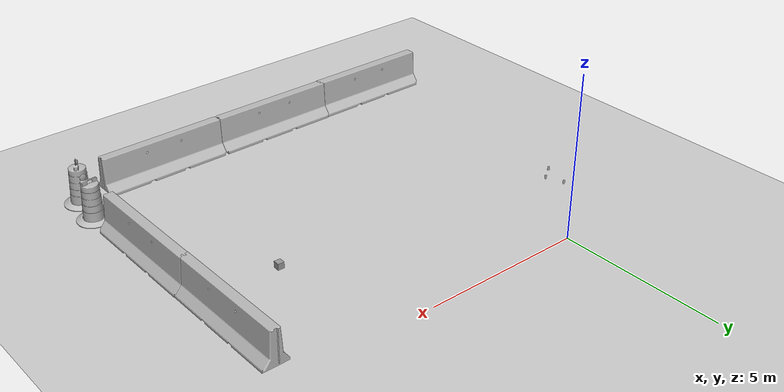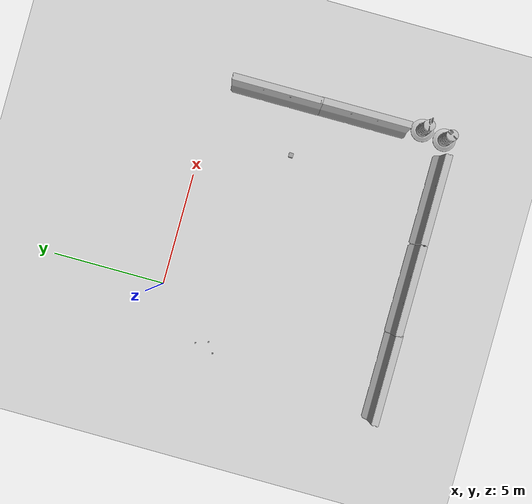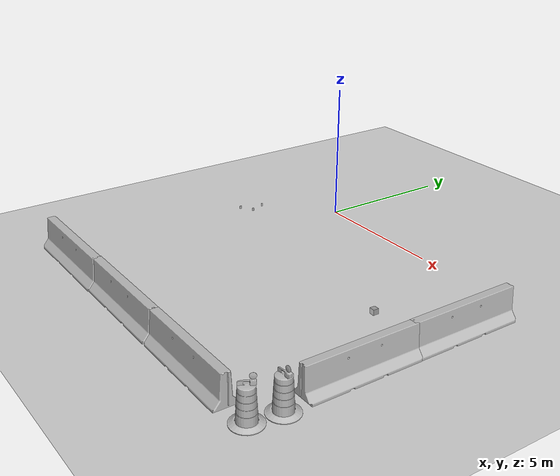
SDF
<sdf version="1.7">
 <world name="default">
  <model name="ground_plane">
   <static>1</static>
   <link name="link">
    <collision name="collision">
     <geometry><plane><normal>0 0 1</normal><size>100 100</size></plane></geometry>
     <surface><friction><ode><mu>100</mu><mu2>50</mu2></ode></friction></surface>
    </collision>
    <visual name="visual">
     <cast_shadows>0</cast_shadows>
     <geometry><plane><normal>0 0 1</normal><size>100 100</size></plane></geometry>
     <material>
      <script><uri>file://media/materials/scripts/gazebo.material</uri><name>Gazebo/Grey</name></script>
     </material>
    </visual>
   </link>
  </model>
  <model name="jersey_barrier_clone_3_clone_0">
   <static>1</static>
   <link name="link">
    <visual name="visual">
     <geometry><mesh><uri>model://jersey_barrier/meshes/jersey_barrier.dae</uri></mesh></geometry>
    </visual>
    <collision name="upright">
     <pose>0 0 0.5715 0 -0 0</pose>
     <geometry><box><size>4.06542 0.3063 1.143</size></box></geometry>
    </collision>
    <collision name="base">
     <pose>0 0 0.032258 0 -0 0</pose>
     <geometry><box><size>4.06542 0.8107 0.064516</size></box></geometry>
    </collision>
    <collision name="base2">
     <pose>0 0 0.1 0 -0 0</pose>
     <geometry><box><size>4.06542 0.65 0.1</size></box></geometry>
    </collision>
    <collision name="base3">
     <pose>0 0 0.2 0 -0 0</pose>
     <geometry><box><size>4.06542 0.5 0.1</size></box></geometry>
    </collision>
    <collision name="left-angle">
     <pose>0 -0.224 0.2401 0.9 -0 0</pose>
     <geometry><box><size>4.06542 0.5 0.064516</size></box></geometry>
    </collision>
    <collision name="right-angle">
     <pose>0 0.224 0.2401 -0.9 0 0</pose>
     <geometry><box><size>4.06542 0.5 0.064516</size></box></geometry>
    </collision>
   </link>
   <pose>9.4315 -2.6268 0 0 0 -1.56865</pose>
  </model>
  <model name="jersey_barrier_clone_3_clone_1">
   <static>1</static>
   <link name="link">
    <visual name="visual">
     <geometry><mesh><uri>model://jersey_barrier/meshes/jersey_barrier.dae</uri></mesh></geometry>
    </visual>
    <collision name="upright">
     <pose>0 0 0.5715 0 -0 0</pose>
     <geometry><box><size>4.06542 0.3063 1.143</size></box></geometry>
    </collision>
    <collision name="base">
     <pose>0 0 0.032258 0 -0 0</pose>
     <geometry><box><size>4.06542 0.8107 0.064516</size></box></geometry>
    </collision>
    <collision name="base2">
     <pose>0 0 0.1 0 -0 0</pose>
     <geometry><box><size>4.06542 0.65 0.1</size></box></geometry>
    </collision>
    <collision name="base3">
     <pose>0 0 0.2 0 -0 0</pose>
     <geometry><box><size>4.06542 0.5 0.1</size></box></geometry>
    </collision>
    <collision name="left-angle">
     <pose>0 -0.224 0.2401 0.9 -0 0</pose>
     <geometry><box><size>4.06542 0.5 0.064516</size></box></geometry>
    </collision>
    <collision name="right-angle">
     <pose>0 0.224 0.2401 -0.9 0 0</pose>
     <geometry><box><size>4.06542 0.5 0.064516</size></box></geometry>
    </collision>
   </link>
   <pose>9.44969 -6.53485 0 0 0 -1.56865</pose>
  </model>
  <model name="jersey_barrier_clone_2_clone">
   <static>1</static>
   <link name="link">
    <visual name="visual">
     <geometry><mesh><uri>model://jersey_barrier/meshes/jersey_barrier.dae</uri></mesh></geometry>
    </visual>
    <collision name="upright">
     <pose>0 0 0.5715 0 -0 0</pose>
     <geometry><box><size>4.06542 0.3063 1.143</size></box></geometry>
    </collision>
    <collision name="base">
     <pose>0 0 0.032258 0 -0 0</pose>
     <geometry><box><size>4.06542 0.8107 0.064516</size></box></geometry>
    </collision>
    <collision name="base2">
     <pose>0 0 0.1 0 -0 0</pose>
     <geometry><box><size>4.06542 0.65 0.1</size></box></geometry>
    </collision>
    <collision name="base3">
     <pose>0 0 0.2 0 -0 0</pose>
     <geometry><box><size>4.06542 0.5 0.1</size></box></geometry>
    </collision>
    <collision name="left-angle">
     <pose>0 -0.224 0.2401 0.9 -0 0</pose>
     <geometry><box><size>4.06542 0.5 0.064516</size></box></geometry>
    </collision>
    <collision name="right-angle">
     <pose>0 0.224 0.2401 -0.9 0 0</pose>
     <geometry><box><size>4.06542 0.5 0.064516</size></box></geometry>
    </collision>
   </link>
   <pose>6.65768 -10.4333 0 0 -0 0</pose>
  </model>
  <model name="jersey_barrier_clone_2_clone_0">
   <static>1</static>
   <link name="link">
    <visual name="visual">
     <geometry><mesh><uri>model://jersey_barrier/meshes/jersey_barrier.dae</uri></mesh></geometry>
    </visual>
    <collision name="upright">
     <pose>0 0 0.5715 0 -0 0</pose>
     <geometry><box><size>4.06542 0.3063 1.143</size></box></geometry>
    </collision>
    <collision name="base">
     <pose>0 0 0.032258 0 -0 0</pose>
     <geometry><box><size>4.06542 0.8107 0.064516</size></box></geometry>
    </collision>
    <collision name="base2">
     <pose>0 0 0.1 0 -0 0</pose>
     <geometry><box><size>4.06542 0.65 0.1</size></box></geometry>
    </collision>
    <collision name="base3">
     <pose>0 0 0.2 0 -0 0</pose>
     <geometry><box><size>4.06542 0.5 0.1</size></box></geometry>
    </collision>
    <collision name="left-angle">
     <pose>0 -0.224 0.2401 0.9 -0 0</pose>
     <geometry><box><size>4.06542 0.5 0.064516</size></box></geometry>
    </collision>
    <collision name="right-angle">
     <pose>0 0.224 0.2401 -0.9 0 0</pose>
     <geometry><box><size>4.06542 0.5 0.064516</size></box></geometry>
    </collision>
   </link>
   <pose>2.59616 -10.436 0 0 -0 0</pose>
  </model>
  <model name="jersey_barrier_clone_2_clone_1">
   <static>1</static>
   <link name="link">
    <visual name="visual">
     <geometry><mesh><uri>model://jersey_barrier/meshes/jersey_barrier.dae</uri></mesh></geometry>
    </visual>
    <collision name="upright">
     <pose>0 0 0.5715 0 -0 0</pose>
     <geometry><box><size>4.06542 0.3063 1.143</size></box></geometry>
    </collision>
    <collision name="base">
     <pose>0 0 0.032258 0 -0 0</pose>
     <geometry><box><size>4.06542 0.8107 0.064516</size></box></geometry>
    </collision>
    <collision name="base2">
     <pose>0 0 0.1 0 -0 0</pose>
     <geometry><box><size>4.06542 0.65 0.1</size></box></geometry>
    </collision>
    <collision name="base3">
     <pose>0 0 0.2 0 -0 0</pose>
     <geometry><box><size>4.06542 0.5 0.1</size></box></geometry>
    </collision>
    <collision name="left-angle">
     <pose>0 -0.224 0.2401 0.9 -0 0</pose>
     <geometry><box><size>4.06542 0.5 0.064516</size></box></geometry>
    </collision>
    <collision name="right-angle">
     <pose>0 0.224 0.2401 -0.9 0 0</pose>
     <geometry><box><size>4.06542 0.5 0.064516</size></box></geometry>
    </collision>
   </link>
   <pose>-1.33414 -10.4589 0 0 -0 0</pose>
  </model>
  <model name="Construction Barrel_3">
   <link name="link">
    <inertial>
     <pose>0 0 0.4 0 -0 0</pose>
     <mass>500</mass>
     <inertia><ixx>51.2096</ixx><iyy>51.2096</iyy><izz>25</izz><ixy>0</ixy><ixz>0</ixz><iyz>0</iyz></inertia>
    </inertial>
    <collision name="collision">
     <geometry><mesh><uri>model://construction_barrel/meshes/construction_barrel.dae</uri></mesh></geometry>
    </collision>
    <visual name="visual">
     <geometry><mesh><uri>model://construction_barrel/meshes/construction_barrel.dae</uri></mesh></geometry>
    </visual>
   </link>
   <pose>9.6322 -9.27312 -2e-06 0 7e-06 0.074446</pose>
  </model>
  <model name="marker12_box">
   <link name="marker">
    <inertial>
     <mass>0.1</mass>
     <inertia><ixx>0</ixx><ixy>0</ixy><ixz>0</ixz><iyy>0</iyy><iyz>0</iyz><izz>0</izz></inertia>
    </inertial>
    <self_collide>1</self_collide>
    <pose>-0.76428 -0.101106 0.120004 -0.015494 1.56996 -0.015507</pose>
    <visual name="visual">
     <geometry><box><size>0.2 0.2 0.001</size></box></geometry>
     <material>
      <script>
       <uri>model://marker12/material/scripts</uri>
       <uri>model://marker12/material/textures</uri>
       <name>Aruco/marker12</name>
      </script>
      <shader type="pixel"><normal_map>__default__</normal_map></shader>
      <emissive>0 0 0 1</emissive>
      <ambient>1 1 1 1</ambient>
      <diffuse>1 1 1 1</diffuse>
      <specular>0 0 0 1</specular>
     </material>
    </visual>
    <collision name="collision">
     <geometry><box><size>0.2 0.2 0.02</size></box></geometry>
     <surface>
      <friction>
       <ode><mu>1</mu><mu2>1</mu2><fdir1>0 0 0</fdir1><slip1>0</slip1><slip2>0</slip2></ode>
       <torsional>
        <coefficient>1</coefficient>
        <patch_radius>0</patch_radius>
        <surface_radius>0</surface_radius>
        <use_patch_radius>1</use_patch_radius>
        <ode><slip>0</slip></ode>
       </torsional>
      </friction>
      <bounce><restitution_coefficient>0</restitution_coefficient><threshold>1e+06</threshold></bounce>
      <contact>
       <collide_without_contact>0</collide_without_contact>
       <collide_without_contact_bitmask>1</collide_without_contact_bitmask>
       <collide_bitmask>1</collide_bitmask>
       <ode>
        <soft_cfm>0</soft_cfm>
        <soft_erp>0.2</soft_erp>
        <kp>1e+13</kp>
        <kd>1</kd>
        <max_vel>0.01</max_vel>
        <min_depth>0</min_depth>
       </ode>
       <bullet>
        <split_impulse>1</split_impulse>
        <split_impulse_penetration_threshold>-0.01</split_impulse_penetration_threshold>
        <soft_cfm>0</soft_cfm>
        <soft_erp>0.2</soft_erp>
        <kp>1e+13</kp>
        <kd>1</kd>
       </bullet>
      </contact>
     </surface>
    </collision>
   </link>
   <link name="link_1">
    <inertial>
     <mass>1</mass>
     <inertia>
      <ixx>0.166667</ixx>
      <ixy>0</ixy>
      <ixz>0</ixz>
      <iyy>0.166667</iyy>
      <iyz>0</iyz>
      <izz>0.166667</izz>
     </inertia>
    </inertial>
    <pose>-0.86428 -0.101106 0.12 -1.3e-05 -4.2e-05 0</pose>
    <visual name="visual">
     <geometry><box><size>0.2 0.2 0.2</size></box></geometry>
     <material>
      <lighting>1</lighting>
      <script><uri>file://media/materials/scripts/gazebo.material</uri><name>Gazebo/Grey</name></script>
      <shader type="pixel"><normal_map>__default__</normal_map></shader>
      <emissive>0 0 0 1</emissive>
      <ambient>0.3 0.3 0.3 1</ambient>
      <diffuse>0.7 0.7 0.7 1</diffuse>
      <specular>0.01 0.01 0.01 1</specular>
     </material>
    </visual>
    <collision name="collision">
     <geometry><box><size>0.2 0.2 0.2</size></box></geometry>
     <surface>
      <friction>
       <ode><mu>1</mu><mu2>1</mu2><fdir1>0 0 0</fdir1><slip1>0</slip1><slip2>0</slip2></ode>
       <torsional>
        <coefficient>1</coefficient>
        <patch_radius>0</patch_radius>
        <surface_radius>0</surface_radius>
        <use_patch_radius>1</use_patch_radius>
        <ode><slip>0</slip></ode>
       </torsional>
      </friction>
      <bounce><restitution_coefficient>0</restitution_coefficient><threshold>1e+06</threshold></bounce>
      <contact>
       <collide_without_contact>0</collide_without_contact>
       <collide_without_contact_bitmask>1</collide_without_contact_bitmask>
       <collide_bitmask>1</collide_bitmask>
       <ode>
        <soft_cfm>0</soft_cfm>
        <soft_erp>0.2</soft_erp>
        <kp>1e+13</kp>
        <kd>1</kd>
        <max_vel>0.01</max_vel>
        <min_depth>0</min_depth>
       </ode>
       <bullet>
        <split_impulse>1</split_impulse>
        <split_impulse_penetration_threshold>-0.01</split_impulse_penetration_threshold>
        <soft_cfm>0</soft_cfm>
        <soft_erp>0.2</soft_erp>
        <kp>1e+13</kp>
        <kd>1</kd>
       </bullet>
      </contact>
     </surface>
    </collision>
   </link>
   <joint name="link_1_JOINT_3" type="fixed">
    <parent>link_1</parent>
    <child>marker</child>
    <physics>
     <ode><limit><cfm>0</cfm><erp>0.2</erp></limit><suspension><cfm>0</cfm><erp>0.2</erp></suspension></ode>
    </physics>
   </joint>
   <static>0</static>
   <pose>7.05713 -4.80602 -0.020007 1.6e-05 1.8e-05 -1.60735</pose>
  </model>
  <model name="Construction Barrel_4_clone">
   <link name="link">
    <inertial>
     <pose>0 0 0.4 0 -0 0</pose>
     <mass>500</mass>
     <inertia><ixx>51.2096</ixx><iyy>51.2096</iyy><izz>25</izz><ixy>0</ixy><ixz>0</ixz><iyz>0</iyz></inertia>
    </inertial>
    <collision name="collision">
     <geometry><mesh><uri>model://construction_barrel/meshes/construction_barrel.dae</uri></mesh></geometry>
    </collision>
    <visual name="visual">
     <geometry><mesh><uri>model://construction_barrel/meshes/construction_barrel.dae</uri></mesh></geometry>
    </visual>
   </link>
   <pose>9.48072 -10.3247 -1e-06 3e-06 -2e-06 1.05423</pose>
  </model>
  <model name="coke_can_clone_1">
   <link name="link">
    <inertial>
     <pose>-0.01 -0.012 0.15 0 -0 0</pose>
     <mass>0.39</mass>
     <inertia><ixx>0.00058</ixx><ixy>0</ixy><ixz>0</ixz><iyy>0.00058</iyy><iyz>0</iyz><izz>0.00019</izz></inertia>
    </inertial>
    <collision name="collision">
     <pose>0 0 -0.46 0 -0 0</pose>
     <geometry><mesh><uri>model://coke_can/meshes/coke_can.dae</uri></mesh></geometry>
     <surface>
      <friction><ode><mu>1</mu><mu2>1</mu2></ode></friction>
      <contact><ode><kp>1e+07</kp><kd>1</kd><min_depth>0.001</min_depth><max_vel>0.1</max_vel></ode></contact>
     </surface>
    </collision>
    <visual name="visual">
     <pose>0 0 -0.46 0 -0 0</pose>
     <geometry><mesh><uri>model://coke_can/meshes/coke_can.dae</uri></mesh></geometry>
    </visual>
   </link>
   <pose>-2.15402 -2.07194 0.276147 -0.040592 0.000499 0.026834</pose>
  </model>
  <model name="coke_can_clone_2">
   <link name="link">
    <inertial>
     <pose>-0.01 -0.012 0.15 0 -0 0</pose>
     <mass>0.39</mass>
     <inertia><ixx>0.00058</ixx><ixy>0</ixy><ixz>0</ixz><iyy>0.00058</iyy><iyz>0</iyz><izz>0.00019</izz></inertia>
    </inertial>
    <collision name="collision">
     <pose>0 0 -0.46 0 -0 0</pose>
     <geometry><mesh><uri>model://coke_can/meshes/coke_can.dae</uri></mesh></geometry>
     <surface>
      <friction><ode><mu>1</mu><mu2>1</mu2></ode></friction>
      <contact><ode><kp>1e+07</kp><kd>1</kd><min_depth>0.001</min_depth><max_vel>0.1</max_vel></ode></contact>
     </surface>
    </collision>
    <visual name="visual">
     <pose>0 0 -0.46 0 -0 0</pose>
     <geometry><mesh><uri>model://coke_can/meshes/coke_can.dae</uri></mesh></geometry>
    </visual>
   </link>
   <pose>-1.95602 -2.62529 0.276147 -0.040592 0.000499 0.022788</pose>
  </model>
  <model name="coke_can_clone_4">
   <link name="link">
    <inertial>
     <pose>-0.01 -0.012 0.15 0 -0 0</pose>
     <mass>0.39</mass>
     <inertia><ixx>0.00058</ixx><ixy>0</ixy><ixz>0</ixz><iyy>0.00058</iyy><iyz>0</iyz><izz>0.00019</izz></inertia>
    </inertial>
    <collision name="collision">
     <pose>0 0 -0.46 0 -0 0</pose>
     <geometry><mesh><uri>model://coke_can/meshes/coke_can.dae</uri></mesh></geometry>
     <surface>
      <friction><ode><mu>1</mu><mu2>1</mu2></ode></friction>
      <contact><ode><kp>1e+07</kp><kd>1</kd><min_depth>0.001</min_depth><max_vel>0.1</max_vel></ode></contact>
     </surface>
    </collision>
    <visual name="visual">
     <pose>0 0 -0.46 0 -0 0</pose>
     <geometry><mesh><uri>model://coke_can/meshes/coke_can.dae</uri></mesh></geometry>
    </visual>
   </link>
   <pose>-2.4079 -2.92683 0.276147 -0.040592 0.000499 0.014453</pose>
  </model>
 </world>
</sdf>
